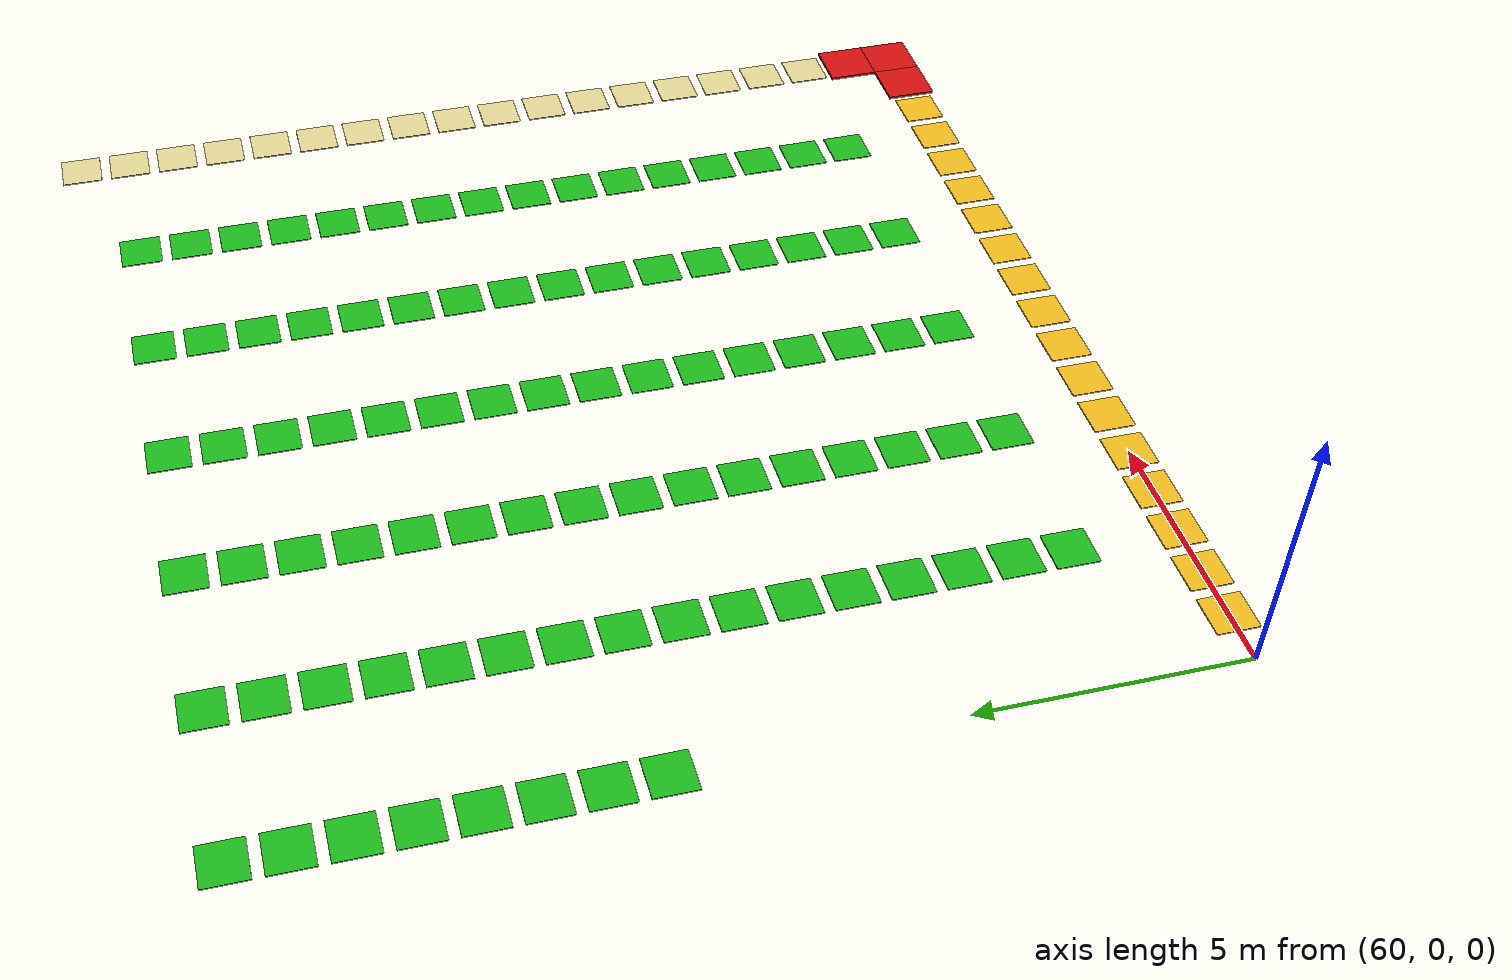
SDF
<sdf version="1.10">
 <world name="my_map">
  <model name="blocked_0006">
   <static>true</static>
   <pose>77.0
        0.0
        0.045
        0 0 0</pose>
   <link name="link">
    <visual name="visual">
     <geometry><box><size>1.0
                1.0
                0.05</size></box></geometry>
     <material><ambient>0.8 0.05 0.05 1</ambient><diffuse>0.8 0.05 0.05 1</diffuse></material>
    </visual>
   </link>
  </model>
  <model name="blocked_0008">
   <static>true</static>
   <pose>78.0
        0.0
        0.045
        0 0 0</pose>
   <link name="link">
    <visual name="visual">
     <geometry><box><size>1.0
                1.0
                0.05</size></box></geometry>
     <material><ambient>0.8 0.05 0.05 1</ambient><diffuse>0.8 0.05 0.05 1</diffuse></material>
    </visual>
   </link>
  </model>
  <model name="blocked_0009">
   <static>true</static>
   <pose>78.0
        1.0
        0.045
        0 0 0</pose>
   <link name="link">
    <visual name="visual">
     <geometry><box><size>1.0
                1.0
                0.05</size></box></geometry>
     <material><ambient>0.8 0.05 0.05 1</ambient><diffuse>0.8 0.05 0.05 1</diffuse></material>
    </visual>
   </link>
  </model>
  <model name="staging_168">
   <static>true</static>
   <pose>78.0
        18.0
        0.02
        0 0 0</pose>
   <link name="link">
    <visual name="visual">
     <geometry><box><size>0.8
                0.8
                0.02</size></box></geometry>
     <material><ambient>0.85 0.80 0.55 1</ambient><diffuse>0.85 0.80 0.55 1</diffuse></material>
    </visual>
   </link>
  </model>
  <model name="shelf_1870">
   <static>true</static>
   <pose>60.0
        17.0
        0.02
        0 0 0</pose>
   <link name="link">
    <visual name="visual">
     <geometry><box><size>0.8
                0.8
                0.02</size></box></geometry>
     <material><ambient>0.10 0.70 0.10 1</ambient><diffuse>0.10 0.70 0.10 1</diffuse></material>
    </visual>
   </link>
  </model>
  <model name="shelf_1871">
   <static>true</static>
   <pose>63.0
        17.0
        0.02
        0 0 0</pose>
   <link name="link">
    <visual name="visual">
     <geometry><box><size>0.8
                0.8
                0.02</size></box></geometry>
     <material><ambient>0.10 0.70 0.10 1</ambient><diffuse>0.10 0.70 0.10 1</diffuse></material>
    </visual>
   </link>
  </model>
  <model name="shelf_1872">
   <static>true</static>
   <pose>66.0
        17.0
        0.02
        0 0 0</pose>
   <link name="link">
    <visual name="visual">
     <geometry><box><size>0.8
                0.8
                0.02</size></box></geometry>
     <material><ambient>0.10 0.70 0.10 1</ambient><diffuse>0.10 0.70 0.10 1</diffuse></material>
    </visual>
   </link>
  </model>
  <model name="shelf_1873">
   <static>true</static>
   <pose>69.0
        17.0
        0.02
        0 0 0</pose>
   <link name="link">
    <visual name="visual">
     <geometry><box><size>0.8
                0.8
                0.02</size></box></geometry>
     <material><ambient>0.10 0.70 0.10 1</ambient><diffuse>0.10 0.70 0.10 1</diffuse></material>
    </visual>
   </link>
  </model>
  <model name="shelf_1874">
   <static>true</static>
   <pose>72.0
        17.0
        0.02
        0 0 0</pose>
   <link name="link">
    <visual name="visual">
     <geometry><box><size>0.8
                0.8
                0.02</size></box></geometry>
     <material><ambient>0.10 0.70 0.10 1</ambient><diffuse>0.10 0.70 0.10 1</diffuse></material>
    </visual>
   </link>
  </model>
  <model name="shelf_1875">
   <static>true</static>
   <pose>75.0
        17.0
        0.02
        0 0 0</pose>
   <link name="link">
    <visual name="visual">
     <geometry><box><size>0.8
                0.8
                0.02</size></box></geometry>
     <material><ambient>0.10 0.70 0.10 1</ambient><diffuse>0.10 0.70 0.10 1</diffuse></material>
    </visual>
   </link>
  </model>
  <model name="staging_170">
   <static>true</static>
   <pose>78.0
        17.0
        0.02
        0 0 0</pose>
   <link name="link">
    <visual name="visual">
     <geometry><box><size>0.8
                0.8
                0.02</size></box></geometry>
     <material><ambient>0.85 0.80 0.55 1</ambient><diffuse>0.85 0.80 0.55 1</diffuse></material>
    </visual>
   </link>
  </model>
  <model name="shelf_1895">
   <static>true</static>
   <pose>60.0
        16.0
        0.02
        0 0 0</pose>
   <link name="link">
    <visual name="visual">
     <geometry><box><size>0.8
                0.8
                0.02</size></box></geometry>
     <material><ambient>0.10 0.70 0.10 1</ambient><diffuse>0.10 0.70 0.10 1</diffuse></material>
    </visual>
   </link>
  </model>
  <model name="shelf_1896">
   <static>true</static>
   <pose>63.0
        16.0
        0.02
        0 0 0</pose>
   <link name="link">
    <visual name="visual">
     <geometry><box><size>0.8
                0.8
                0.02</size></box></geometry>
     <material><ambient>0.10 0.70 0.10 1</ambient><diffuse>0.10 0.70 0.10 1</diffuse></material>
    </visual>
   </link>
  </model>
  <model name="shelf_1897">
   <static>true</static>
   <pose>66.0
        16.0
        0.02
        0 0 0</pose>
   <link name="link">
    <visual name="visual">
     <geometry><box><size>0.8
                0.8
                0.02</size></box></geometry>
     <material><ambient>0.10 0.70 0.10 1</ambient><diffuse>0.10 0.70 0.10 1</diffuse></material>
    </visual>
   </link>
  </model>
  <model name="shelf_1898">
   <static>true</static>
   <pose>69.0
        16.0
        0.02
        0 0 0</pose>
   <link name="link">
    <visual name="visual">
     <geometry><box><size>0.8
                0.8
                0.02</size></box></geometry>
     <material><ambient>0.10 0.70 0.10 1</ambient><diffuse>0.10 0.70 0.10 1</diffuse></material>
    </visual>
   </link>
  </model>
  <model name="shelf_1899">
   <static>true</static>
   <pose>72.0
        16.0
        0.02
        0 0 0</pose>
   <link name="link">
    <visual name="visual">
     <geometry><box><size>0.8
                0.8
                0.02</size></box></geometry>
     <material><ambient>0.10 0.70 0.10 1</ambient><diffuse>0.10 0.70 0.10 1</diffuse></material>
    </visual>
   </link>
  </model>
  <model name="shelf_1900">
   <static>true</static>
   <pose>75.0
        16.0
        0.02
        0 0 0</pose>
   <link name="link">
    <visual name="visual">
     <geometry><box><size>0.8
                0.8
                0.02</size></box></geometry>
     <material><ambient>0.10 0.70 0.10 1</ambient><diffuse>0.10 0.70 0.10 1</diffuse></material>
    </visual>
   </link>
  </model>
  <model name="staging_172">
   <static>true</static>
   <pose>78.0
        16.0
        0.02
        0 0 0</pose>
   <link name="link">
    <visual name="visual">
     <geometry><box><size>0.8
                0.8
                0.02</size></box></geometry>
     <material><ambient>0.85 0.80 0.55 1</ambient><diffuse>0.85 0.80 0.55 1</diffuse></material>
    </visual>
   </link>
  </model>
  <model name="shelf_1920">
   <static>true</static>
   <pose>60.0
        15.0
        0.02
        0 0 0</pose>
   <link name="link">
    <visual name="visual">
     <geometry><box><size>0.8
                0.8
                0.02</size></box></geometry>
     <material><ambient>0.10 0.70 0.10 1</ambient><diffuse>0.10 0.70 0.10 1</diffuse></material>
    </visual>
   </link>
  </model>
  <model name="shelf_1921">
   <static>true</static>
   <pose>63.0
        15.0
        0.02
        0 0 0</pose>
   <link name="link">
    <visual name="visual">
     <geometry><box><size>0.8
                0.8
                0.02</size></box></geometry>
     <material><ambient>0.10 0.70 0.10 1</ambient><diffuse>0.10 0.70 0.10 1</diffuse></material>
    </visual>
   </link>
  </model>
  <model name="shelf_1922">
   <static>true</static>
   <pose>66.0
        15.0
        0.02
        0 0 0</pose>
   <link name="link">
    <visual name="visual">
     <geometry><box><size>0.8
                0.8
                0.02</size></box></geometry>
     <material><ambient>0.10 0.70 0.10 1</ambient><diffuse>0.10 0.70 0.10 1</diffuse></material>
    </visual>
   </link>
  </model>
  <model name="shelf_1923">
   <static>true</static>
   <pose>69.0
        15.0
        0.02
        0 0 0</pose>
   <link name="link">
    <visual name="visual">
     <geometry><box><size>0.8
                0.8
                0.02</size></box></geometry>
     <material><ambient>0.10 0.70 0.10 1</ambient><diffuse>0.10 0.70 0.10 1</diffuse></material>
    </visual>
   </link>
  </model>
  <model name="shelf_1924">
   <static>true</static>
   <pose>72.0
        15.0
        0.02
        0 0 0</pose>
   <link name="link">
    <visual name="visual">
     <geometry><box><size>0.8
                0.8
                0.02</size></box></geometry>
     <material><ambient>0.10 0.70 0.10 1</ambient><diffuse>0.10 0.70 0.10 1</diffuse></material>
    </visual>
   </link>
  </model>
  <model name="shelf_1925">
   <static>true</static>
   <pose>75.0
        15.0
        0.02
        0 0 0</pose>
   <link name="link">
    <visual name="visual">
     <geometry><box><size>0.8
                0.8
                0.02</size></box></geometry>
     <material><ambient>0.10 0.70 0.10 1</ambient><diffuse>0.10 0.70 0.10 1</diffuse></material>
    </visual>
   </link>
  </model>
  <model name="staging_174">
   <static>true</static>
   <pose>78.0
        15.0
        0.02
        0 0 0</pose>
   <link name="link">
    <visual name="visual">
     <geometry><box><size>0.8
                0.8
                0.02</size></box></geometry>
     <material><ambient>0.85 0.80 0.55 1</ambient><diffuse>0.85 0.80 0.55 1</diffuse></material>
    </visual>
   </link>
  </model>
  <model name="shelf_1945">
   <static>true</static>
   <pose>60.0
        14.0
        0.02
        0 0 0</pose>
   <link name="link">
    <visual name="visual">
     <geometry><box><size>0.8
                0.8
                0.02</size></box></geometry>
     <material><ambient>0.10 0.70 0.10 1</ambient><diffuse>0.10 0.70 0.10 1</diffuse></material>
    </visual>
   </link>
  </model>
  <model name="shelf_1946">
   <static>true</static>
   <pose>63.0
        14.0
        0.02
        0 0 0</pose>
   <link name="link">
    <visual name="visual">
     <geometry><box><size>0.8
                0.8
                0.02</size></box></geometry>
     <material><ambient>0.10 0.70 0.10 1</ambient><diffuse>0.10 0.70 0.10 1</diffuse></material>
    </visual>
   </link>
  </model>
  <model name="shelf_1947">
   <static>true</static>
   <pose>66.0
        14.0
        0.02
        0 0 0</pose>
   <link name="link">
    <visual name="visual">
     <geometry><box><size>0.8
                0.8
                0.02</size></box></geometry>
     <material><ambient>0.10 0.70 0.10 1</ambient><diffuse>0.10 0.70 0.10 1</diffuse></material>
    </visual>
   </link>
  </model>
  <model name="shelf_1948">
   <static>true</static>
   <pose>69.0
        14.0
        0.02
        0 0 0</pose>
   <link name="link">
    <visual name="visual">
     <geometry><box><size>0.8
                0.8
                0.02</size></box></geometry>
     <material><ambient>0.10 0.70 0.10 1</ambient><diffuse>0.10 0.70 0.10 1</diffuse></material>
    </visual>
   </link>
  </model>
  <model name="shelf_1949">
   <static>true</static>
   <pose>72.0
        14.0
        0.02
        0 0 0</pose>
   <link name="link">
    <visual name="visual">
     <geometry><box><size>0.8
                0.8
                0.02</size></box></geometry>
     <material><ambient>0.10 0.70 0.10 1</ambient><diffuse>0.10 0.70 0.10 1</diffuse></material>
    </visual>
   </link>
  </model>
  <model name="shelf_1950">
   <static>true</static>
   <pose>75.0
        14.0
        0.02
        0 0 0</pose>
   <link name="link">
    <visual name="visual">
     <geometry><box><size>0.8
                0.8
                0.02</size></box></geometry>
     <material><ambient>0.10 0.70 0.10 1</ambient><diffuse>0.10 0.70 0.10 1</diffuse></material>
    </visual>
   </link>
  </model>
  <model name="staging_176">
   <static>true</static>
   <pose>78.0
        14.0
        0.02
        0 0 0</pose>
   <link name="link">
    <visual name="visual">
     <geometry><box><size>0.8
                0.8
                0.02</size></box></geometry>
     <material><ambient>0.85 0.80 0.55 1</ambient><diffuse>0.85 0.80 0.55 1</diffuse></material>
    </visual>
   </link>
  </model>
  <model name="shelf_1970">
   <static>true</static>
   <pose>60.0
        13.0
        0.02
        0 0 0</pose>
   <link name="link">
    <visual name="visual">
     <geometry><box><size>0.8
                0.8
                0.02</size></box></geometry>
     <material><ambient>0.10 0.70 0.10 1</ambient><diffuse>0.10 0.70 0.10 1</diffuse></material>
    </visual>
   </link>
  </model>
  <model name="shelf_1971">
   <static>true</static>
   <pose>63.0
        13.0
        0.02
        0 0 0</pose>
   <link name="link">
    <visual name="visual">
     <geometry><box><size>0.8
                0.8
                0.02</size></box></geometry>
     <material><ambient>0.10 0.70 0.10 1</ambient><diffuse>0.10 0.70 0.10 1</diffuse></material>
    </visual>
   </link>
  </model>
  <model name="shelf_1972">
   <static>true</static>
   <pose>66.0
        13.0
        0.02
        0 0 0</pose>
   <link name="link">
    <visual name="visual">
     <geometry><box><size>0.8
                0.8
                0.02</size></box></geometry>
     <material><ambient>0.10 0.70 0.10 1</ambient><diffuse>0.10 0.70 0.10 1</diffuse></material>
    </visual>
   </link>
  </model>
  <model name="shelf_1973">
   <static>true</static>
   <pose>69.0
        13.0
        0.02
        0 0 0</pose>
   <link name="link">
    <visual name="visual">
     <geometry><box><size>0.8
                0.8
                0.02</size></box></geometry>
     <material><ambient>0.10 0.70 0.10 1</ambient><diffuse>0.10 0.70 0.10 1</diffuse></material>
    </visual>
   </link>
  </model>
  <model name="shelf_1974">
   <static>true</static>
   <pose>72.0
        13.0
        0.02
        0 0 0</pose>
   <link name="link">
    <visual name="visual">
     <geometry><box><size>0.8
                0.8
                0.02</size></box></geometry>
     <material><ambient>0.10 0.70 0.10 1</ambient><diffuse>0.10 0.70 0.10 1</diffuse></material>
    </visual>
   </link>
  </model>
  <model name="shelf_1975">
   <static>true</static>
   <pose>75.0
        13.0
        0.02
        0 0 0</pose>
   <link name="link">
    <visual name="visual">
     <geometry><box><size>0.8
                0.8
                0.02</size></box></geometry>
     <material><ambient>0.10 0.70 0.10 1</ambient><diffuse>0.10 0.70 0.10 1</diffuse></material>
    </visual>
   </link>
  </model>
  <model name="staging_178">
   <static>true</static>
   <pose>78.0
        13.0
        0.02
        0 0 0</pose>
   <link name="link">
    <visual name="visual">
     <geometry><box><size>0.8
                0.8
                0.02</size></box></geometry>
     <material><ambient>0.85 0.80 0.55 1</ambient><diffuse>0.85 0.80 0.55 1</diffuse></material>
    </visual>
   </link>
  </model>
  <model name="shelf_1995">
   <static>true</static>
   <pose>60.0
        12.0
        0.02
        0 0 0</pose>
   <link name="link">
    <visual name="visual">
     <geometry><box><size>0.8
                0.8
                0.02</size></box></geometry>
     <material><ambient>0.10 0.70 0.10 1</ambient><diffuse>0.10 0.70 0.10 1</diffuse></material>
    </visual>
   </link>
  </model>
  <model name="shelf_1996">
   <static>true</static>
   <pose>63.0
        12.0
        0.02
        0 0 0</pose>
   <link name="link">
    <visual name="visual">
     <geometry><box><size>0.8
                0.8
                0.02</size></box></geometry>
     <material><ambient>0.10 0.70 0.10 1</ambient><diffuse>0.10 0.70 0.10 1</diffuse></material>
    </visual>
   </link>
  </model>
  <model name="shelf_1997">
   <static>true</static>
   <pose>66.0
        12.0
        0.02
        0 0 0</pose>
   <link name="link">
    <visual name="visual">
     <geometry><box><size>0.8
                0.8
                0.02</size></box></geometry>
     <material><ambient>0.10 0.70 0.10 1</ambient><diffuse>0.10 0.70 0.10 1</diffuse></material>
    </visual>
   </link>
  </model>
  <model name="shelf_1998">
   <static>true</static>
   <pose>69.0
        12.0
        0.02
        0 0 0</pose>
   <link name="link">
    <visual name="visual">
     <geometry><box><size>0.8
                0.8
                0.02</size></box></geometry>
     <material><ambient>0.10 0.70 0.10 1</ambient><diffuse>0.10 0.70 0.10 1</diffuse></material>
    </visual>
   </link>
  </model>
  <model name="shelf_1999">
   <static>true</static>
   <pose>72.0
        12.0
        0.02
        0 0 0</pose>
   <link name="link">
    <visual name="visual">
     <geometry><box><size>0.8
                0.8
                0.02</size></box></geometry>
     <material><ambient>0.10 0.70 0.10 1</ambient><diffuse>0.10 0.70 0.10 1</diffuse></material>
    </visual>
   </link>
  </model>
  <model name="shelf_2000">
   <static>true</static>
   <pose>75.0
        12.0
        0.02
        0 0 0</pose>
   <link name="link">
    <visual name="visual">
     <geometry><box><size>0.8
                0.8
                0.02</size></box></geometry>
     <material><ambient>0.10 0.70 0.10 1</ambient><diffuse>0.10 0.70 0.10 1</diffuse></material>
    </visual>
   </link>
  </model>
  <model name="staging_180">
   <static>true</static>
   <pose>78.0
        12.0
        0.02
        0 0 0</pose>
   <link name="link">
    <visual name="visual">
     <geometry><box><size>0.8
                0.8
                0.02</size></box></geometry>
     <material><ambient>0.85 0.80 0.55 1</ambient><diffuse>0.85 0.80 0.55 1</diffuse></material>
    </visual>
   </link>
  </model>
  <model name="shelf_2020">
   <static>true</static>
   <pose>60.0
        11.0
        0.02
        0 0 0</pose>
   <link name="link">
    <visual name="visual">
     <geometry><box><size>0.8
                0.8
                0.02</size></box></geometry>
     <material><ambient>0.10 0.70 0.10 1</ambient><diffuse>0.10 0.70 0.10 1</diffuse></material>
    </visual>
   </link>
  </model>
  <model name="shelf_2021">
   <static>true</static>
   <pose>63.0
        11.0
        0.02
        0 0 0</pose>
   <link name="link">
    <visual name="visual">
     <geometry><box><size>0.8
                0.8
                0.02</size></box></geometry>
     <material><ambient>0.10 0.70 0.10 1</ambient><diffuse>0.10 0.70 0.10 1</diffuse></material>
    </visual>
   </link>
  </model>
  <model name="shelf_2022">
   <static>true</static>
   <pose>66.0
        11.0
        0.02
        0 0 0</pose>
   <link name="link">
    <visual name="visual">
     <geometry><box><size>0.8
                0.8
                0.02</size></box></geometry>
     <material><ambient>0.10 0.70 0.10 1</ambient><diffuse>0.10 0.70 0.10 1</diffuse></material>
    </visual>
   </link>
  </model>
  <model name="shelf_2023">
   <static>true</static>
   <pose>69.0
        11.0
        0.02
        0 0 0</pose>
   <link name="link">
    <visual name="visual">
     <geometry><box><size>0.8
                0.8
                0.02</size></box></geometry>
     <material><ambient>0.10 0.70 0.10 1</ambient><diffuse>0.10 0.70 0.10 1</diffuse></material>
    </visual>
   </link>
  </model>
  <model name="shelf_2024">
   <static>true</static>
   <pose>72.0
        11.0
        0.02
        0 0 0</pose>
   <link name="link">
    <visual name="visual">
     <geometry><box><size>0.8
                0.8
                0.02</size></box></geometry>
     <material><ambient>0.10 0.70 0.10 1</ambient><diffuse>0.10 0.70 0.10 1</diffuse></material>
    </visual>
   </link>
  </model>
  <model name="shelf_2025">
   <static>true</static>
   <pose>75.0
        11.0
        0.02
        0 0 0</pose>
   <link name="link">
    <visual name="visual">
     <geometry><box><size>0.8
                0.8
                0.02</size></box></geometry>
     <material><ambient>0.10 0.70 0.10 1</ambient><diffuse>0.10 0.70 0.10 1</diffuse></material>
    </visual>
   </link>
  </model>
  <model name="staging_182">
   <static>true</static>
   <pose>78.0
        11.0
        0.02
        0 0 0</pose>
   <link name="link">
    <visual name="visual">
     <geometry><box><size>0.8
                0.8
                0.02</size></box></geometry>
     <material><ambient>0.85 0.80 0.55 1</ambient><diffuse>0.85 0.80 0.55 1</diffuse></material>
    </visual>
   </link>
  </model>
  <model name="shelf_2045">
   <static>true</static>
   <pose>60.0
        10.0
        0.02
        0 0 0</pose>
   <link name="link">
    <visual name="visual">
     <geometry><box><size>0.8
                0.8
                0.02</size></box></geometry>
     <material><ambient>0.10 0.70 0.10 1</ambient><diffuse>0.10 0.70 0.10 1</diffuse></material>
    </visual>
   </link>
  </model>
  <model name="shelf_2046">
   <static>true</static>
   <pose>63.0
        10.0
        0.02
        0 0 0</pose>
   <link name="link">
    <visual name="visual">
     <geometry><box><size>0.8
                0.8
                0.02</size></box></geometry>
     <material><ambient>0.10 0.70 0.10 1</ambient><diffuse>0.10 0.70 0.10 1</diffuse></material>
    </visual>
   </link>
  </model>
  <model name="shelf_2047">
   <static>true</static>
   <pose>66.0
        10.0
        0.02
        0 0 0</pose>
   <link name="link">
    <visual name="visual">
     <geometry><box><size>0.8
                0.8
                0.02</size></box></geometry>
     <material><ambient>0.10 0.70 0.10 1</ambient><diffuse>0.10 0.70 0.10 1</diffuse></material>
    </visual>
   </link>
  </model>
  <model name="shelf_2048">
   <static>true</static>
   <pose>69.0
        10.0
        0.02
        0 0 0</pose>
   <link name="link">
    <visual name="visual">
     <geometry><box><size>0.8
                0.8
                0.02</size></box></geometry>
     <material><ambient>0.10 0.70 0.10 1</ambient><diffuse>0.10 0.70 0.10 1</diffuse></material>
    </visual>
   </link>
  </model>
  <model name="shelf_2049">
   <static>true</static>
   <pose>72.0
        10.0
        0.02
        0 0 0</pose>
   <link name="link">
    <visual name="visual">
     <geometry><box><size>0.8
                0.8
                0.02</size></box></geometry>
     <material><ambient>0.10 0.70 0.10 1</ambient><diffuse>0.10 0.70 0.10 1</diffuse></material>
    </visual>
   </link>
  </model>
  <model name="shelf_2050">
   <static>true</static>
   <pose>75.0
        10.0
        0.02
        0 0 0</pose>
   <link name="link">
    <visual name="visual">
     <geometry><box><size>0.8
                0.8
                0.02</size></box></geometry>
     <material><ambient>0.10 0.70 0.10 1</ambient><diffuse>0.10 0.70 0.10 1</diffuse></material>
    </visual>
   </link>
  </model>
  <model name="staging_184">
   <static>true</static>
   <pose>78.0
        10.0
        0.02
        0 0 0</pose>
   <link name="link">
    <visual name="visual">
     <geometry><box><size>0.8
                0.8
                0.02</size></box></geometry>
     <material><ambient>0.85 0.80 0.55 1</ambient><diffuse>0.85 0.80 0.55 1</diffuse></material>
    </visual>
   </link>
  </model>
  <model name="shelf_2071">
   <static>true</static>
   <pose>63.0
        9.0
        0.02
        0 0 0</pose>
   <link name="link">
    <visual name="visual">
     <geometry><box><size>0.8
                0.8
                0.02</size></box></geometry>
     <material><ambient>0.10 0.70 0.10 1</ambient><diffuse>0.10 0.70 0.10 1</diffuse></material>
    </visual>
   </link>
  </model>
  <model name="shelf_2072">
   <static>true</static>
   <pose>66.0
        9.0
        0.02
        0 0 0</pose>
   <link name="link">
    <visual name="visual">
     <geometry><box><size>0.8
                0.8
                0.02</size></box></geometry>
     <material><ambient>0.10 0.70 0.10 1</ambient><diffuse>0.10 0.70 0.10 1</diffuse></material>
    </visual>
   </link>
  </model>
  <model name="shelf_2073">
   <static>true</static>
   <pose>69.0
        9.0
        0.02
        0 0 0</pose>
   <link name="link">
    <visual name="visual">
     <geometry><box><size>0.8
                0.8
                0.02</size></box></geometry>
     <material><ambient>0.10 0.70 0.10 1</ambient><diffuse>0.10 0.70 0.10 1</diffuse></material>
    </visual>
   </link>
  </model>
  <model name="shelf_2074">
   <static>true</static>
   <pose>72.0
        9.0
        0.02
        0 0 0</pose>
   <link name="link">
    <visual name="visual">
     <geometry><box><size>0.8
                0.8
                0.02</size></box></geometry>
     <material><ambient>0.10 0.70 0.10 1</ambient><diffuse>0.10 0.70 0.10 1</diffuse></material>
    </visual>
   </link>
  </model>
  <model name="shelf_2075">
   <static>true</static>
   <pose>75.0
        9.0
        0.02
        0 0 0</pose>
   <link name="link">
    <visual name="visual">
     <geometry><box><size>0.8
                0.8
                0.02</size></box></geometry>
     <material><ambient>0.10 0.70 0.10 1</ambient><diffuse>0.10 0.70 0.10 1</diffuse></material>
    </visual>
   </link>
  </model>
  <model name="staging_186">
   <static>true</static>
   <pose>78.0
        9.0
        0.02
        0 0 0</pose>
   <link name="link">
    <visual name="visual">
     <geometry><box><size>0.8
                0.8
                0.02</size></box></geometry>
     <material><ambient>0.85 0.80 0.55 1</ambient><diffuse>0.85 0.80 0.55 1</diffuse></material>
    </visual>
   </link>
  </model>
  <model name="shelf_2096">
   <static>true</static>
   <pose>63.0
        8.0
        0.02
        0 0 0</pose>
   <link name="link">
    <visual name="visual">
     <geometry><box><size>0.8
                0.8
                0.02</size></box></geometry>
     <material><ambient>0.10 0.70 0.10 1</ambient><diffuse>0.10 0.70 0.10 1</diffuse></material>
    </visual>
   </link>
  </model>
  <model name="shelf_2097">
   <static>true</static>
   <pose>66.0
        8.0
        0.02
        0 0 0</pose>
   <link name="link">
    <visual name="visual">
     <geometry><box><size>0.8
                0.8
                0.02</size></box></geometry>
     <material><ambient>0.10 0.70 0.10 1</ambient><diffuse>0.10 0.70 0.10 1</diffuse></material>
    </visual>
   </link>
  </model>
  <model name="shelf_2098">
   <static>true</static>
   <pose>69.0
        8.0
        0.02
        0 0 0</pose>
   <link name="link">
    <visual name="visual">
     <geometry><box><size>0.8
                0.8
                0.02</size></box></geometry>
     <material><ambient>0.10 0.70 0.10 1</ambient><diffuse>0.10 0.70 0.10 1</diffuse></material>
    </visual>
   </link>
  </model>
  <model name="shelf_2099">
   <static>true</static>
   <pose>72.0
        8.0
        0.02
        0 0 0</pose>
   <link name="link">
    <visual name="visual">
     <geometry><box><size>0.8
                0.8
                0.02</size></box></geometry>
     <material><ambient>0.10 0.70 0.10 1</ambient><diffuse>0.10 0.70 0.10 1</diffuse></material>
    </visual>
   </link>
  </model>
  <model name="shelf_2100">
   <static>true</static>
   <pose>75.0
        8.0
        0.02
        0 0 0</pose>
   <link name="link">
    <visual name="visual">
     <geometry><box><size>0.8
                0.8
                0.02</size></box></geometry>
     <material><ambient>0.10 0.70 0.10 1</ambient><diffuse>0.10 0.70 0.10 1</diffuse></material>
    </visual>
   </link>
  </model>
  <model name="staging_188">
   <static>true</static>
   <pose>78.0
        8.0
        0.02
        0 0 0</pose>
   <link name="link">
    <visual name="visual">
     <geometry><box><size>0.8
                0.8
                0.02</size></box></geometry>
     <material><ambient>0.85 0.80 0.55 1</ambient><diffuse>0.85 0.80 0.55 1</diffuse></material>
    </visual>
   </link>
  </model>
  <model name="shelf_2121">
   <static>true</static>
   <pose>63.0
        7.0
        0.02
        0 0 0</pose>
   <link name="link">
    <visual name="visual">
     <geometry><box><size>0.8
                0.8
                0.02</size></box></geometry>
     <material><ambient>0.10 0.70 0.10 1</ambient><diffuse>0.10 0.70 0.10 1</diffuse></material>
    </visual>
   </link>
  </model>
  <model name="shelf_2122">
   <static>true</static>
   <pose>66.0
        7.0
        0.02
        0 0 0</pose>
   <link name="link">
    <visual name="visual">
     <geometry><box><size>0.8
                0.8
                0.02</size></box></geometry>
     <material><ambient>0.10 0.70 0.10 1</ambient><diffuse>0.10 0.70 0.10 1</diffuse></material>
    </visual>
   </link>
  </model>
  <model name="shelf_2123">
   <static>true</static>
   <pose>69.0
        7.0
        0.02
        0 0 0</pose>
   <link name="link">
    <visual name="visual">
     <geometry><box><size>0.8
                0.8
                0.02</size></box></geometry>
     <material><ambient>0.10 0.70 0.10 1</ambient><diffuse>0.10 0.70 0.10 1</diffuse></material>
    </visual>
   </link>
  </model>
  <model name="shelf_2124">
   <static>true</static>
   <pose>72.0
        7.0
        0.02
        0 0 0</pose>
   <link name="link">
    <visual name="visual">
     <geometry><box><size>0.8
                0.8
                0.02</size></box></geometry>
     <material><ambient>0.10 0.70 0.10 1</ambient><diffuse>0.10 0.70 0.10 1</diffuse></material>
    </visual>
   </link>
  </model>
  <model name="shelf_2125">
   <static>true</static>
   <pose>75.0
        7.0
        0.02
        0 0 0</pose>
   <link name="link">
    <visual name="visual">
     <geometry><box><size>0.8
                0.8
                0.02</size></box></geometry>
     <material><ambient>0.10 0.70 0.10 1</ambient><diffuse>0.10 0.70 0.10 1</diffuse></material>
    </visual>
   </link>
  </model>
  <model name="staging_190">
   <static>true</static>
   <pose>78.0
        7.0
        0.02
        0 0 0</pose>
   <link name="link">
    <visual name="visual">
     <geometry><box><size>0.8
                0.8
                0.02</size></box></geometry>
     <material><ambient>0.85 0.80 0.55 1</ambient><diffuse>0.85 0.80 0.55 1</diffuse></material>
    </visual>
   </link>
  </model>
  <model name="shelf_2146">
   <static>true</static>
   <pose>63.0
        6.0
        0.02
        0 0 0</pose>
   <link name="link">
    <visual name="visual">
     <geometry><box><size>0.8
                0.8
                0.02</size></box></geometry>
     <material><ambient>0.10 0.70 0.10 1</ambient><diffuse>0.10 0.70 0.10 1</diffuse></material>
    </visual>
   </link>
  </model>
  <model name="shelf_2147">
   <static>true</static>
   <pose>66.0
        6.0
        0.02
        0 0 0</pose>
   <link name="link">
    <visual name="visual">
     <geometry><box><size>0.8
                0.8
                0.02</size></box></geometry>
     <material><ambient>0.10 0.70 0.10 1</ambient><diffuse>0.10 0.70 0.10 1</diffuse></material>
    </visual>
   </link>
  </model>
  <model name="shelf_2148">
   <static>true</static>
   <pose>69.0
        6.0
        0.02
        0 0 0</pose>
   <link name="link">
    <visual name="visual">
     <geometry><box><size>0.8
                0.8
                0.02</size></box></geometry>
     <material><ambient>0.10 0.70 0.10 1</ambient><diffuse>0.10 0.70 0.10 1</diffuse></material>
    </visual>
   </link>
  </model>
  <model name="shelf_2149">
   <static>true</static>
   <pose>72.0
        6.0
        0.02
        0 0 0</pose>
   <link name="link">
    <visual name="visual">
     <geometry><box><size>0.8
                0.8
                0.02</size></box></geometry>
     <material><ambient>0.10 0.70 0.10 1</ambient><diffuse>0.10 0.70 0.10 1</diffuse></material>
    </visual>
   </link>
  </model>
  <model name="shelf_2150">
   <static>true</static>
   <pose>75.0
        6.0
        0.02
        0 0 0</pose>
   <link name="link">
    <visual name="visual">
     <geometry><box><size>0.8
                0.8
                0.02</size></box></geometry>
     <material><ambient>0.10 0.70 0.10 1</ambient><diffuse>0.10 0.70 0.10 1</diffuse></material>
    </visual>
   </link>
  </model>
  <model name="staging_192">
   <static>true</static>
   <pose>78.0
        6.0
        0.02
        0 0 0</pose>
   <link name="link">
    <visual name="visual">
     <geometry><box><size>0.8
                0.8
                0.02</size></box></geometry>
     <material><ambient>0.85 0.80 0.55 1</ambient><diffuse>0.85 0.80 0.55 1</diffuse></material>
    </visual>
   </link>
  </model>
  <model name="shelf_2171">
   <static>true</static>
   <pose>63.0
        5.0
        0.02
        0 0 0</pose>
   <link name="link">
    <visual name="visual">
     <geometry><box><size>0.8
                0.8
                0.02</size></box></geometry>
     <material><ambient>0.10 0.70 0.10 1</ambient><diffuse>0.10 0.70 0.10 1</diffuse></material>
    </visual>
   </link>
  </model>
  <model name="shelf_2172">
   <static>true</static>
   <pose>66.0
        5.0
        0.02
        0 0 0</pose>
   <link name="link">
    <visual name="visual">
     <geometry><box><size>0.8
                0.8
                0.02</size></box></geometry>
     <material><ambient>0.10 0.70 0.10 1</ambient><diffuse>0.10 0.70 0.10 1</diffuse></material>
    </visual>
   </link>
  </model>
  <model name="shelf_2173">
   <static>true</static>
   <pose>69.0
        5.0
        0.02
        0 0 0</pose>
   <link name="link">
    <visual name="visual">
     <geometry><box><size>0.8
                0.8
                0.02</size></box></geometry>
     <material><ambient>0.10 0.70 0.10 1</ambient><diffuse>0.10 0.70 0.10 1</diffuse></material>
    </visual>
   </link>
  </model>
  <model name="shelf_2174">
   <static>true</static>
   <pose>72.0
        5.0
        0.02
        0 0 0</pose>
   <link name="link">
    <visual name="visual">
     <geometry><box><size>0.8
                0.8
                0.02</size></box></geometry>
     <material><ambient>0.10 0.70 0.10 1</ambient><diffuse>0.10 0.70 0.10 1</diffuse></material>
    </visual>
   </link>
  </model>
  <model name="shelf_2175">
   <static>true</static>
   <pose>75.0
        5.0
        0.02
        0 0 0</pose>
   <link name="link">
    <visual name="visual">
     <geometry><box><size>0.8
                0.8
                0.02</size></box></geometry>
     <material><ambient>0.10 0.70 0.10 1</ambient><diffuse>0.10 0.70 0.10 1</diffuse></material>
    </visual>
   </link>
  </model>
  <model name="staging_194">
   <static>true</static>
   <pose>78.0
        5.0
        0.02
        0 0 0</pose>
   <link name="link">
    <visual name="visual">
     <geometry><box><size>0.8
                0.8
                0.02</size></box></geometry>
     <material><ambient>0.85 0.80 0.55 1</ambient><diffuse>0.85 0.80 0.55 1</diffuse></material>
    </visual>
   </link>
  </model>
  <model name="shelf_2196">
   <static>true</static>
   <pose>63.0
        4.0
        0.02
        0 0 0</pose>
   <link name="link">
    <visual name="visual">
     <geometry><box><size>0.8
                0.8
                0.02</size></box></geometry>
     <material><ambient>0.10 0.70 0.10 1</ambient><diffuse>0.10 0.70 0.10 1</diffuse></material>
    </visual>
   </link>
  </model>
  <model name="shelf_2197">
   <static>true</static>
   <pose>66.0
        4.0
        0.02
        0 0 0</pose>
   <link name="link">
    <visual name="visual">
     <geometry><box><size>0.8
                0.8
                0.02</size></box></geometry>
     <material><ambient>0.10 0.70 0.10 1</ambient><diffuse>0.10 0.70 0.10 1</diffuse></material>
    </visual>
   </link>
  </model>
  <model name="shelf_2198">
   <static>true</static>
   <pose>69.0
        4.0
        0.02
        0 0 0</pose>
   <link name="link">
    <visual name="visual">
     <geometry><box><size>0.8
                0.8
                0.02</size></box></geometry>
     <material><ambient>0.10 0.70 0.10 1</ambient><diffuse>0.10 0.70 0.10 1</diffuse></material>
    </visual>
   </link>
  </model>
  <model name="shelf_2199">
   <static>true</static>
   <pose>72.0
        4.0
        0.02
        0 0 0</pose>
   <link name="link">
    <visual name="visual">
     <geometry><box><size>0.8
                0.8
                0.02</size></box></geometry>
     <material><ambient>0.10 0.70 0.10 1</ambient><diffuse>0.10 0.70 0.10 1</diffuse></material>
    </visual>
   </link>
  </model>
  <model name="shelf_2200">
   <static>true</static>
   <pose>75.0
        4.0
        0.02
        0 0 0</pose>
   <link name="link">
    <visual name="visual">
     <geometry><box><size>0.8
                0.8
                0.02</size></box></geometry>
     <material><ambient>0.10 0.70 0.10 1</ambient><diffuse>0.10 0.70 0.10 1</diffuse></material>
    </visual>
   </link>
  </model>
  <model name="staging_196">
   <static>true</static>
   <pose>78.0
        4.0
        0.02
        0 0 0</pose>
   <link name="link">
    <visual name="visual">
     <geometry><box><size>0.8
                0.8
                0.02</size></box></geometry>
     <material><ambient>0.85 0.80 0.55 1</ambient><diffuse>0.85 0.80 0.55 1</diffuse></material>
    </visual>
   </link>
  </model>
  <model name="shelf_2221">
   <static>true</static>
   <pose>63.0
        3.0
        0.02
        0 0 0</pose>
   <link name="link">
    <visual name="visual">
     <geometry><box><size>0.8
                0.8
                0.02</size></box></geometry>
     <material><ambient>0.10 0.70 0.10 1</ambient><diffuse>0.10 0.70 0.10 1</diffuse></material>
    </visual>
   </link>
  </model>
  <model name="shelf_2222">
   <static>true</static>
   <pose>66.0
        3.0
        0.02
        0 0 0</pose>
   <link name="link">
    <visual name="visual">
     <geometry><box><size>0.8
                0.8
                0.02</size></box></geometry>
     <material><ambient>0.10 0.70 0.10 1</ambient><diffuse>0.10 0.70 0.10 1</diffuse></material>
    </visual>
   </link>
  </model>
  <model name="shelf_2223">
   <static>true</static>
   <pose>69.0
        3.0
        0.02
        0 0 0</pose>
   <link name="link">
    <visual name="visual">
     <geometry><box><size>0.8
                0.8
                0.02</size></box></geometry>
     <material><ambient>0.10 0.70 0.10 1</ambient><diffuse>0.10 0.70 0.10 1</diffuse></material>
    </visual>
   </link>
  </model>
  <model name="shelf_2224">
   <static>true</static>
   <pose>72.0
        3.0
        0.02
        0 0 0</pose>
   <link name="link">
    <visual name="visual">
     <geometry><box><size>0.8
                0.8
                0.02</size></box></geometry>
     <material><ambient>0.10 0.70 0.10 1</ambient><diffuse>0.10 0.70 0.10 1</diffuse></material>
    </visual>
   </link>
  </model>
  <model name="shelf_2225">
   <static>true</static>
   <pose>75.0
        3.0
        0.02
        0 0 0</pose>
   <link name="link">
    <visual name="visual">
     <geometry><box><size>0.8
                0.8
                0.02</size></box></geometry>
     <material><ambient>0.10 0.70 0.10 1</ambient><diffuse>0.10 0.70 0.10 1</diffuse></material>
    </visual>
   </link>
  </model>
  <model name="staging_198">
   <static>true</static>
   <pose>78.0
        3.0
        0.02
        0 0 0</pose>
   <link name="link">
    <visual name="visual">
     <geometry><box><size>0.8
                0.8
                0.02</size></box></geometry>
     <material><ambient>0.85 0.80 0.55 1</ambient><diffuse>0.85 0.80 0.55 1</diffuse></material>
    </visual>
   </link>
  </model>
  <model name="shelf_2246">
   <static>true</static>
   <pose>63.0
        2.0
        0.02
        0 0 0</pose>
   <link name="link">
    <visual name="visual">
     <geometry><box><size>0.8
                0.8
                0.02</size></box></geometry>
     <material><ambient>0.10 0.70 0.10 1</ambient><diffuse>0.10 0.70 0.10 1</diffuse></material>
    </visual>
   </link>
  </model>
  <model name="shelf_2247">
   <static>true</static>
   <pose>66.0
        2.0
        0.02
        0 0 0</pose>
   <link name="link">
    <visual name="visual">
     <geometry><box><size>0.8
                0.8
                0.02</size></box></geometry>
     <material><ambient>0.10 0.70 0.10 1</ambient><diffuse>0.10 0.70 0.10 1</diffuse></material>
    </visual>
   </link>
  </model>
  <model name="shelf_2248">
   <static>true</static>
   <pose>69.0
        2.0
        0.02
        0 0 0</pose>
   <link name="link">
    <visual name="visual">
     <geometry><box><size>0.8
                0.8
                0.02</size></box></geometry>
     <material><ambient>0.10 0.70 0.10 1</ambient><diffuse>0.10 0.70 0.10 1</diffuse></material>
    </visual>
   </link>
  </model>
  <model name="shelf_2249">
   <static>true</static>
   <pose>72.0
        2.0
        0.02
        0 0 0</pose>
   <link name="link">
    <visual name="visual">
     <geometry><box><size>0.8
                0.8
                0.02</size></box></geometry>
     <material><ambient>0.10 0.70 0.10 1</ambient><diffuse>0.10 0.70 0.10 1</diffuse></material>
    </visual>
   </link>
  </model>
  <model name="shelf_2250">
   <static>true</static>
   <pose>75.0
        2.0
        0.02
        0 0 0</pose>
   <link name="link">
    <visual name="visual">
     <geometry><box><size>0.8
                0.8
                0.02</size></box></geometry>
     <material><ambient>0.10 0.70 0.10 1</ambient><diffuse>0.10 0.70 0.10 1</diffuse></material>
    </visual>
   </link>
  </model>
  <model name="staging_200">
   <static>true</static>
   <pose>78.0
        2.0
        0.02
        0 0 0</pose>
   <link name="link">
    <visual name="visual">
     <geometry><box><size>0.8
                0.8
                0.02</size></box></geometry>
     <material><ambient>0.85 0.80 0.55 1</ambient><diffuse>0.85 0.80 0.55 1</diffuse></material>
    </visual>
   </link>
  </model>
  <model name="dropoff_060">
   <static>true</static>
   <pose>61.0
        0.0
        0.02
        0 0 0</pose>
   <link name="link">
    <visual name="visual">
     <geometry><box><size>0.8
                0.8
                0.02</size></box></geometry>
     <material><ambient>0.90 0.70 0.10 1</ambient><diffuse>0.90 0.70 0.10 1</diffuse></material>
    </visual>
   </link>
  </model>
  <model name="dropoff_061">
   <static>true</static>
   <pose>62.0
        0.0
        0.02
        0 0 0</pose>
   <link name="link">
    <visual name="visual">
     <geometry><box><size>0.8
                0.8
                0.02</size></box></geometry>
     <material><ambient>0.90 0.70 0.10 1</ambient><diffuse>0.90 0.70 0.10 1</diffuse></material>
    </visual>
   </link>
  </model>
  <model name="dropoff_062">
   <static>true</static>
   <pose>63.0
        0.0
        0.02
        0 0 0</pose>
   <link name="link">
    <visual name="visual">
     <geometry><box><size>0.8
                0.8
                0.02</size></box></geometry>
     <material><ambient>0.90 0.70 0.10 1</ambient><diffuse>0.90 0.70 0.10 1</diffuse></material>
    </visual>
   </link>
  </model>
  <model name="dropoff_063">
   <static>true</static>
   <pose>64.0
        0.0
        0.02
        0 0 0</pose>
   <link name="link">
    <visual name="visual">
     <geometry><box><size>0.8
                0.8
                0.02</size></box></geometry>
     <material><ambient>0.90 0.70 0.10 1</ambient><diffuse>0.90 0.70 0.10 1</diffuse></material>
    </visual>
   </link>
  </model>
  <model name="dropoff_064">
   <static>true</static>
   <pose>65.0
        0.0
        0.02
        0 0 0</pose>
   <link name="link">
    <visual name="visual">
     <geometry><box><size>0.8
                0.8
                0.02</size></box></geometry>
     <material><ambient>0.90 0.70 0.10 1</ambient><diffuse>0.90 0.70 0.10 1</diffuse></material>
    </visual>
   </link>
  </model>
  <model name="dropoff_065">
   <static>true</static>
   <pose>66.0
        0.0
        0.02
        0 0 0</pose>
   <link name="link">
    <visual name="visual">
     <geometry><box><size>0.8
                0.8
                0.02</size></box></geometry>
     <material><ambient>0.90 0.70 0.10 1</ambient><diffuse>0.90 0.70 0.10 1</diffuse></material>
    </visual>
   </link>
  </model>
  <model name="dropoff_066">
   <static>true</static>
   <pose>67.0
        0.0
        0.02
        0 0 0</pose>
   <link name="link">
    <visual name="visual">
     <geometry><box><size>0.8
                0.8
                0.02</size></box></geometry>
     <material><ambient>0.90 0.70 0.10 1</ambient><diffuse>0.90 0.70 0.10 1</diffuse></material>
    </visual>
   </link>
  </model>
  <model name="dropoff_067">
   <static>true</static>
   <pose>68.0
        0.0
        0.02
        0 0 0</pose>
   <link name="link">
    <visual name="visual">
     <geometry><box><size>0.8
                0.8
                0.02</size></box></geometry>
     <material><ambient>0.90 0.70 0.10 1</ambient><diffuse>0.90 0.70 0.10 1</diffuse></material>
    </visual>
   </link>
  </model>
  <model name="dropoff_068">
   <static>true</static>
   <pose>69.0
        0.0
        0.02
        0 0 0</pose>
   <link name="link">
    <visual name="visual">
     <geometry><box><size>0.8
                0.8
                0.02</size></box></geometry>
     <material><ambient>0.90 0.70 0.10 1</ambient><diffuse>0.90 0.70 0.10 1</diffuse></material>
    </visual>
   </link>
  </model>
  <model name="dropoff_069">
   <static>true</static>
   <pose>70.0
        0.0
        0.02
        0 0 0</pose>
   <link name="link">
    <visual name="visual">
     <geometry><box><size>0.8
                0.8
                0.02</size></box></geometry>
     <material><ambient>0.90 0.70 0.10 1</ambient><diffuse>0.90 0.70 0.10 1</diffuse></material>
    </visual>
   </link>
  </model>
  <model name="dropoff_070">
   <static>true</static>
   <pose>71.0
        0.0
        0.02
        0 0 0</pose>
   <link name="link">
    <visual name="visual">
     <geometry><box><size>0.8
                0.8
                0.02</size></box></geometry>
     <material><ambient>0.90 0.70 0.10 1</ambient><diffuse>0.90 0.70 0.10 1</diffuse></material>
    </visual>
   </link>
  </model>
  <model name="dropoff_071">
   <static>true</static>
   <pose>72.0
        0.0
        0.02
        0 0 0</pose>
   <link name="link">
    <visual name="visual">
     <geometry><box><size>0.8
                0.8
                0.02</size></box></geometry>
     <material><ambient>0.90 0.70 0.10 1</ambient><diffuse>0.90 0.70 0.10 1</diffuse></material>
    </visual>
   </link>
  </model>
  <model name="dropoff_072">
   <static>true</static>
   <pose>73.0
        0.0
        0.02
        0 0 0</pose>
   <link name="link">
    <visual name="visual">
     <geometry><box><size>0.8
                0.8
                0.02</size></box></geometry>
     <material><ambient>0.90 0.70 0.10 1</ambient><diffuse>0.90 0.70 0.10 1</diffuse></material>
    </visual>
   </link>
  </model>
  <model name="dropoff_073">
   <static>true</static>
   <pose>74.0
        0.0
        0.02
        0 0 0</pose>
   <link name="link">
    <visual name="visual">
     <geometry><box><size>0.8
                0.8
                0.02</size></box></geometry>
     <material><ambient>0.90 0.70 0.10 1</ambient><diffuse>0.90 0.70 0.10 1</diffuse></material>
    </visual>
   </link>
  </model>
  <model name="dropoff_074">
   <static>true</static>
   <pose>75.0
        0.0
        0.02
        0 0 0</pose>
   <link name="link">
    <visual name="visual">
     <geometry><box><size>0.8
                0.8
                0.02</size></box></geometry>
     <material><ambient>0.90 0.70 0.10 1</ambient><diffuse>0.90 0.70 0.10 1</diffuse></material>
    </visual>
   </link>
  </model>
  <model name="dropoff_075">
   <static>true</static>
   <pose>76.0
        0.0
        0.02
        0 0 0</pose>
   <link name="link">
    <visual name="visual">
     <geometry><box><size>0.8
                0.8
                0.02</size></box></geometry>
     <material><ambient>0.90 0.70 0.10 1</ambient><diffuse>0.90 0.70 0.10 1</diffuse></material>
    </visual>
   </link>
  </model>
 </world>
</sdf>
